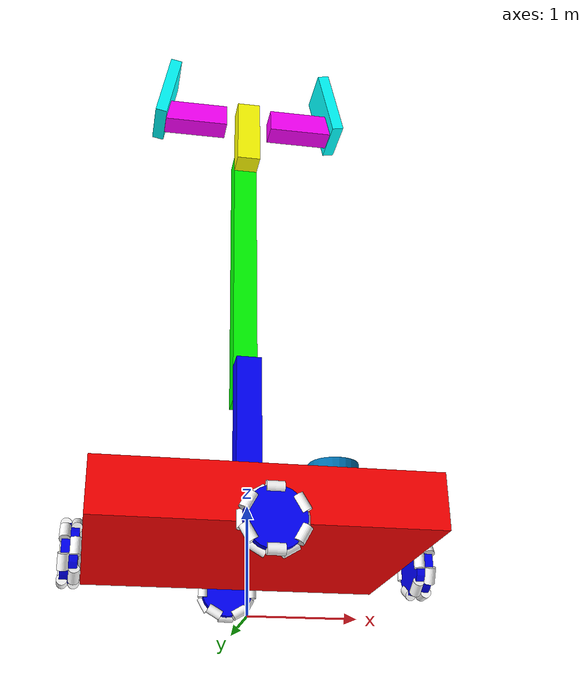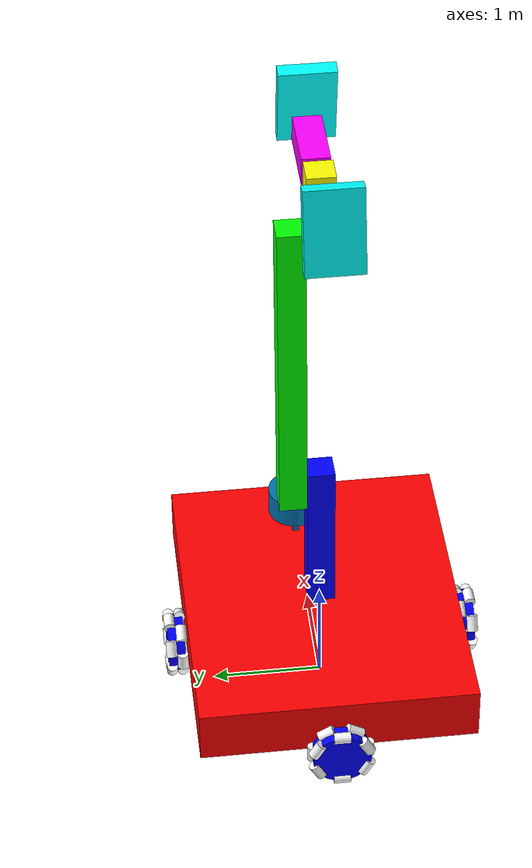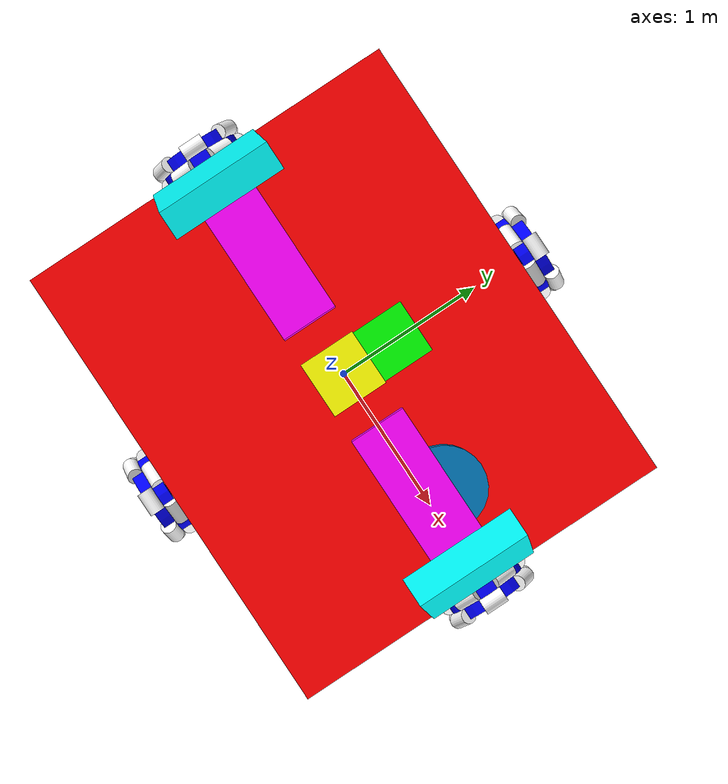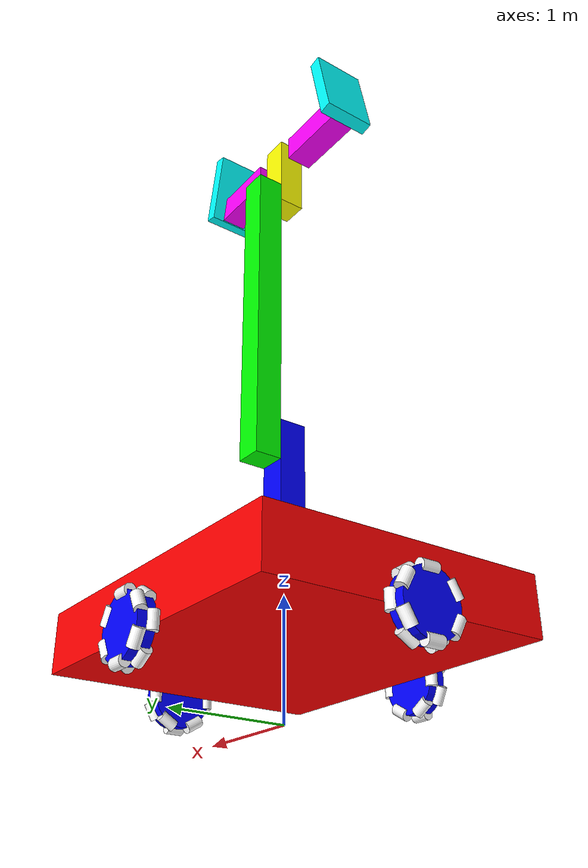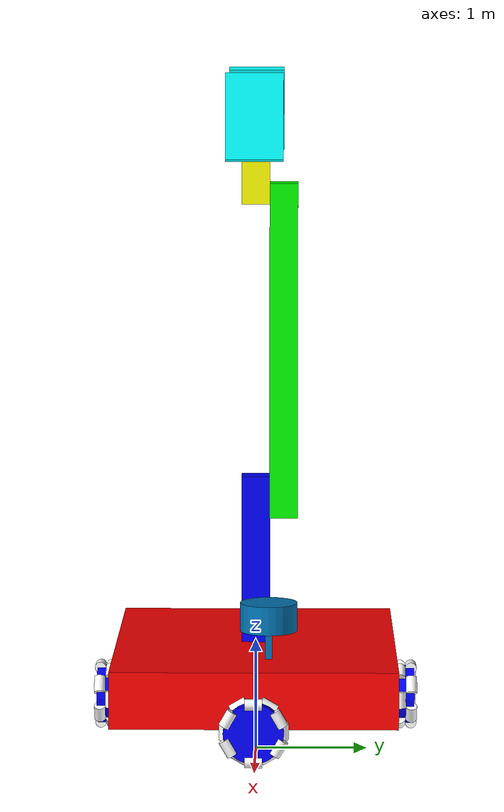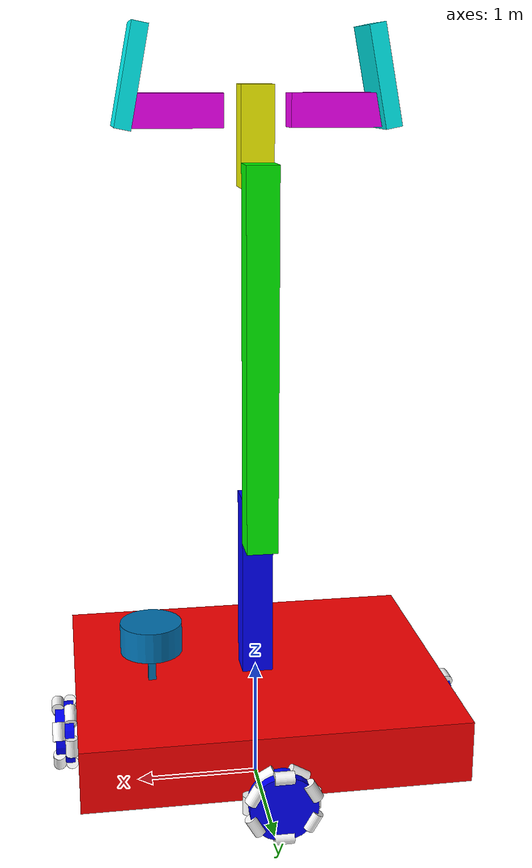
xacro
<?xml version="1.0"?>
<robot name="simple_robot" xmlns:xacro="http://www.ros.org/wiki/xacro">

        <xacro:include filename="$(find ros2_control_car)/model/gazebo.xacro"/>

        <xacro:include filename="$(find ros2_control_car)/model/wheels/omni_wheel.urdf.xacro"/>

        <link name="base_link">
                <visual>
                        <geometry>
                        <box size="${chassis_length} ${chassis_width} ${chassis_height}"/>
                        </geometry>
                        <origin xyz="0 0 ${chassis_offset}" rpy="0 0 0"/>
                        <material name="red"/>
                </visual>

                <collision>
                        <geometry>
                        <box size="0.3 0.25 0.05"/>
                        </geometry>
                        <origin xyz="0 0 ${chassis_offset}" rpy="0 0 0"/>
                </collision>

                <xacro:chassis_inertia />
        </link>

        <!-- LINKS ET JOINTS DES ROUES -->

        <xacro:omni_wheel
                prefix="lf"
                parent="base_link"
                xyz="${chassis_length/2 + wheel_width} 0 ${r}"
                rpy="0 0 ${-pi/2}"
        />

        <xacro:omni_wheel
                prefix="rf"
                parent="base_link"
                xyz="0 ${-chassis_width/2 - wheel_width} ${r}"
                rpy="0 0 ${pi}"
        />

        <xacro:omni_wheel
                prefix="lb"
                parent="base_link"
                xyz="0 ${chassis_width/2 + wheel_width} ${r}"
                rpy="0 0 0"
        />

        <xacro:omni_wheel
                prefix="rb"
                parent="base_link"
                xyz="${-chassis_length/2 - wheel_width} 0 ${r}"
                rpy="0 0 ${pi/2}"
        />

        <!--  ROBOTIC ARM LINKS-->

        <link name="fixed_arm">
                <visual>
                        <geometry>
                                <box size="${arm_length} ${arm_width} ${arm_height}"/>
                        </geometry>
                        <origin xyz="0 0 ${arm_height/2}" rpy="0 0 0"/>
                        <material name="blue"/>
                </visual>

                <collision>
                        <geometry>
                                <box size="${arm_length} ${arm_width} ${arm_height}"/>
                        </geometry>
                        <origin xyz="0 0 ${arm_height/2}" rpy="0 0 0"/>
                        <material name="blue"/>
                </collision>

                <xacro:arm_inertia/>
        </link>

        <link name="first_moving_arm">
                <visual>
                        <geometry>
                                <box size="${arm_length} ${arm_width} ${arm_height*2}"/>
                        </geometry>
                        <origin xyz="0 0 ${arm_height}" rpy="0 0 0"/>
                        <material name="green"/>
                </visual>

                <collision>
                        <geometry>
                                <box size="${arm_length} ${arm_width} ${arm_height*2}"/>
                        </geometry>
                        <origin xyz="0 0 ${arm_height}" rpy="0 0 0"/>
                        <material name="green"/>
                </collision>

                <xacro:arm_inertia/>
        </link>

        <link name="second_moving_arm">
                <visual>
                        <geometry>
                                <box size="${arm_length} ${arm_width} ${arm_height/2}"/>
                        </geometry>
                        <origin xyz="0 0 ${arm_height/4}" rpy="0 0 0"/>
                        <material name="yellow"/>
                </visual>

                <collision>
                        <geometry>
                                <box size="${arm_length} ${arm_width} ${arm_height/2}"/>
                        </geometry>
                        <origin xyz="0 0 ${arm_height/4}" rpy="0 0 0"/>
                        <material name="yellow"/>
                </collision>

                <xacro:arm_inertia/>
        </link>

        <!-- ROBOTIC ARM JOINTS-->

        <joint name="fixed_arm_joint" type="fixed">
                <parent link="base_link" />
                <child link="fixed_arm" />
                <origin xyz="0 0 ${chassis_offset + chassis_height/2}" rpy="0 0 0"/>
        </joint>

        <joint name="first_moving_arm_joint" type="revolute">
                <parent link="fixed_arm" />
                <child link="first_moving_arm" />
                <origin xyz="0 ${arm_width} ${3*arm_height/4}" rpy="0 0 0"/>
                <axis xyz="0 1 0"/>
                <limit effort="5000" velocity="10" lower="${-pi}" upper="${pi}"/>
                <dynamics damping="1.0" friction="1.0"/>
        </joint>

        <joint name="second_moving_arm_joint" type="revolute">
                <parent link="first_moving_arm" />
                <child link="second_moving_arm" />
                <origin xyz="0 -${arm_width} ${15*arm_height/8}" rpy="0 0 0"/>
                <axis xyz="0 1 0"/>
                <limit effort="5000" velocity="10" lower="${-pi}" upper="${pi}"/>
                <dynamics damping="1.0" friction="1.0"/>
        </joint>

        <!-- PLIERS LINK AND JOINT -->

        <link name="first_pliers">
                <visual>
                        <geometry>
                                <box size="${pliers_length} ${pliers_width} ${pliers_height}" />
                        </geometry>
                        <origin xyz="0 0 ${pliers_height/2}" rpy="0 0 0"/>
                        <material name="magenta" />
                </visual>

                <collision>
                        <geometry>
                                <box size="${pliers_length} ${pliers_width} ${pliers_height}" />
                        </geometry>
                        <origin xyz="0 0 ${pliers_height/2}" rpy="0 0 0"/>
                        <material name="magenta" />
                </collision>

                <xacro:pliers_inertia/>
        </link>

        <joint name="first_pliers_joint" type="revolute">
                <parent link="second_moving_arm" />
                <child link="first_pliers" />
                <origin xyz="${arm_length} 0 ${3*arm_height/8}" rpy="0 ${pi/2} 0"/>
                <axis xyz="0 -1 0"/>
                <limit effort="5000" velocity="10" lower="0" upper="1.571"/>
                <dynamics damping="1.0" friction="1.0"/>
        </joint>

        <link name="second_pliers">
                <visual>
                        <geometry>
                                <box size="${pliers_length} ${pliers_width} ${pliers_height}" />
                        </geometry>
                        <origin xyz="0 0 ${pliers_height/2}" rpy="0 0 0"/>
                        <material name="magenta" />
                </visual>

                <collision>
                        <geometry>
                                <box size="${pliers_length} ${pliers_width} ${pliers_height}" />
                        </geometry>
                        <origin xyz="0 0 ${pliers_height/2}" rpy="0 0 0"/>
                        <material name="magenta" />
                </collision>

                <xacro:pliers_inertia/>
        </link>

        <joint name="second_pliers_joint" type="revolute">
                <parent link="second_moving_arm" />
                <child link="second_pliers" />
                <origin xyz="${-arm_length} 0 ${3*arm_height/8}" rpy="0 ${pi/2} 3.1415926535"/>
                <axis xyz="0 -1 0"/>
                <limit effort="5000" velocity="10" lower="0" upper="1.571"/>
                <dynamics damping="1.0" friction="1.0"/>
        </joint>

        <link name="third_pliers">
                <visual>
                        <geometry>
                                <box size="${mini_pliers_length} ${mini_pliers_width} ${mini_pliers_height}" />
                        </geometry>
                        <origin xyz="0 0 ${mini_pliers_height/2}" rpy="0 0 0"/>
                        <material name="cyan" />
                </visual>

                <collision>
                        <geometry>
                                <box size="${mini_pliers_length} ${mini_pliers_width} ${mini_pliers_height}" />
                        </geometry>
                        <origin xyz="0 0 ${mini_pliers_height/2}" rpy="0 0 0"/>
                        <material name="cyan" />
                </collision>

                <xacro:mini_pliers_inertia/>
        </link>

        <joint name="third_pliers_joint" type="revolute">
                <parent link="first_pliers" />
                <child link="third_pliers" />
                <origin xyz="${pliers_length/2} 0 ${pliers_height}" rpy="0 ${pi/16 + pi/2} ${pi}"/>
                <axis xyz="0 1 0"/>
                <limit effort="5000" velocity="10" lower="0" upper="1.571"/>
                <dynamics damping="1.0" friction="1000.0"/>
        </joint>

        <link name="fourth_pliers">
                <visual>
                        <geometry>
                                <box size="${mini_pliers_length} ${mini_pliers_width} ${mini_pliers_height}" />
                        </geometry>
                        <origin xyz="0 0 ${mini_pliers_height/2}" rpy="0 0 0"/>
                        <material name="cyan" />
                </visual>

                <collision>
                        <geometry>
                                <box size="${mini_pliers_length} ${mini_pliers_width} ${mini_pliers_height}" />
                        </geometry>
                        <origin xyz="0 0 ${mini_pliers_height/2}" rpy="0 0 0"/>
                        <material name="cyan" />
                </collision>

                <xacro:mini_pliers_inertia/>
        </link>

        <joint name="fourth_pliers_joint" type="revolute">
                <parent link="second_pliers" />
                <child link="fourth_pliers" />
                <origin xyz="${pliers_length/2} 0 ${pliers_height}" rpy="0 ${pi/16 + pi/2} ${pi}"/>
                <axis xyz="0 1 0"/>
                <limit effort="5000" velocity="10" lower="0" upper="1.571"/>
                <dynamics damping="1.0" friction="1000.0"/>
        </joint>

        <!-- LIDAR LINK AND JOINT-->

        <link name="lidar_link">
                <visual>
                        <origin xyz="${lidar_radius/2} ${lidar_radius/2} ${lidar_length/2}" rpy="0 0 0" />
                        <geometry>
                                <cylinder length="${lidar_length}" radius="${lidar_radius}" />
                        </geometry>
                </visual>
                <visual>
                        <origin xyz="${lidar_radius/2} ${lidar_radius/2} ${-lidar_length/2}" rpy="0 0 0" />
                        <geometry>
                                <box size="${arm_length/4} ${arm_width/4} ${arm_height/6}"/>
                        </geometry>
                </visual>

                <collision name="collision">
                        <origin xyz="${lidar_radius/2} ${lidar_radius/2} ${lidar_length/2}" rpy="0 0 0" />
                        <geometry>
                                <cylinder length="${lidar_length}" radius="${lidar_radius}" />
                        </geometry>
                        <gazebo>
                                <collide_bitmask>0x00</collide_bitmask>
                        </gazebo>
                </collision>

                <xacro:lidar_inertia />

        </link>

        <joint name="lidar_joint" type="fixed">
                <parent link="base_link" />
                <child link="lidar_link" />
                <origin xyz="${chassis_length/4} 0 ${chassis_offset + chassis_height}" rpy="0 0 0" />
        </joint>

        <!-- ROS2_CONTROL -->

        <ros2_control name="RobotController" type="system">
                <hardware>
                        <plugin>gz_ros2_control/GazeboSimSystem</plugin>
                </hardware>

                <joint name="lf_joint">
                        <command_interface name="velocity"/>
                        <state_interface name="position"/>
                        <state_interface name="velocity"/>
                        <state_interface name="effort"/>
                </joint>

                <joint name="rf_joint">
                        <command_interface name="velocity"/>
                        <state_interface name="position"/>
                        <state_interface name="velocity"/>
                        <state_interface name="effort"/>
                </joint>

                <joint name="lb_joint">
                        <command_interface name="velocity"/>
                        <state_interface name="position"/>
                        <state_interface name="velocity"/>
                        <state_interface name="effort"/>
                </joint>

                <joint name="rb_joint">
                        <command_interface name="velocity"/>
                        <state_interface name="position"/>
                        <state_interface name="velocity"/>
                        <state_interface name="effort"/>
                </joint>

                <joint name="first_moving_arm_joint">
                        <command_interface name="position">
                                <param name="min">-3.1415926535</param>
                                <param name="max">3.1415926535</param>
                        </command_interface>
                        <state_interface name="position"/>
                        <state_interface name="velocity"/>
                        <state_interface name="effort"/>
                </joint>

                <joint name="second_moving_arm_joint">
                        <command_interface name="position">
                                <param name="min">-3.1415926535</param>
                                <param name="max">3.1415926535</param>
                        </command_interface>
                        <state_interface name="position"/>
                        <state_interface name="velocity"/>
                        <state_interface name="effort"/>
                </joint>

                <joint name="first_pliers_joint">
                        <command_interface name="position">
                                <param name="min">0</param>
                                <param name="max">1.571</param>
                        </command_interface>
                        <state_interface name="position"/>
                        <state_interface name="velocity"/>
                        <state_interface name="effort"/>
                </joint>

                <joint name="second_pliers_joint">
                        <command_interface name="position">
                                <param name="min">0</param>
                                <param name="max">1.571</param>
                        </command_interface>
                        <state_interface name="position"/>
                        <state_interface name="velocity"/>
                        <state_interface name="effort"/>
                </joint>

        </ros2_control>

</robot>

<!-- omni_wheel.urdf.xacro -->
<robot xmlns:xacro="http://www.ros.org/wiki/xacro">

  <xacro:include filename="$(find ros2_control_car)/model/parameters.xacro"/>
  <!-- ========== MACRO ROLLER ========== -->
  <xacro:macro name="roller" params="prefix parent idx angle1 angle2 wheel_radius wheel_width roller_radius roller_length">

    <link name="${prefix}_roller_${idx}">
      <inertial>
        <origin xyz="0 0 0"/>
        <mass value="0.02"/>
        <inertia
          ixx="0.00001" iyy="0.00001" izz="0.00001"
          ixy="0" ixz="0" iyz="0"/>
      </inertial>

      <collision>
        <origin rpy="1.5708 0 0"/>
        <geometry>
          <cylinder radius="${roller_radius}" length="${roller_length}"/>
        </geometry>
      </collision>

      <visual>
        <origin rpy="1.5708 0 0"/>
        <geometry>
          <cylinder radius="${roller_radius}" length="${roller_length}"/>
        </geometry>
        <material name="white" />
      </visual>
    </link>

    <link name="${prefix}_roller_neighbor_${idx}">
      <inertial>
        <origin xyz="0 0 0"/>
        <mass value="0.02"/>
        <inertia
          ixx="0.00001" iyy="0.00001" izz="0.00001"
          ixy="0" ixz="0" iyz="0"/>
      </inertial>

      <collision>
        <origin rpy="1.5708 0 0"/>
        <geometry>
          <cylinder radius="${roller_radius}" length="${roller_length}"/>
        </geometry>
      </collision>

      <visual>
        <origin rpy="1.5708 0 0"/>
        <geometry>
          <cylinder radius="${roller_radius}" length="${roller_length}"/>
        </geometry>
        <material name="white" />
      </visual>
    </link>

    <joint name="${prefix}_roller_${idx}_joint" type="continuous">
      <parent link="${parent}"/>
      <child link="${prefix}_roller_${idx}"/>
      <origin
        xyz="${(wheel_radius - roller_radius) * cos(angle1)} ${-wheel_width/2} ${(wheel_radius - roller_radius) * sin(angle1)}"
        rpy="${3*pi/2 - angle1} 0 1.5708"/>
      <axis xyz="0 1 0"/>
    </joint>

    <joint name="${prefix}_roller_neighbor_${idx}_joint" type="continuous">
      <parent link="${parent}"/>
      <child link="${prefix}_roller_neighbor_${idx}"/>
      <origin
        xyz="${(wheel_radius - roller_radius) * cos(angle2)} ${2*roller_radius - wheel_width/2} ${(wheel_radius - roller_radius) * sin(angle2)}"
        rpy="${3*pi/2 - angle2} 0 1.5708"/>
      <axis xyz="0 1 0"/>
    </joint>

  </xacro:macro>

  <!-- ========== RÉCURSION ========== -->
  <xacro:macro name="roller_loop"
               params="prefix parent idx count wheel_radius wheel_width roller_radius roller_length">

    <xacro:if value="${idx &lt; count}">
      <xacro:property name="angle1"
                      value="${2 * pi * idx / count}"/>
      <xacro:property name="angle2"
                      value="${2 * pi * idx / count + pi / count}" />

      <xacro:roller
        prefix="${prefix}"
        parent="${parent}"
        idx="${idx}"
        angle1="${angle1}"
        angle2="${angle2}"
        wheel_radius="${wheel_radius}"
        wheel_width="${wheel_width}"
        roller_radius="${roller_radius}"
        roller_length="${roller_length}"/>

      <!-- appel récursif -->
      <xacro:roller_loop
        prefix="${prefix}"
        parent="${parent}"
        idx="${idx + 1}"
        count="${count}"
        wheel_radius="${wheel_radius}"
        wheel_width="${wheel_width}"
        roller_radius="${roller_radius}"
        roller_length="${roller_length}"/>
    </xacro:if>

  </xacro:macro>

  <!-- ========== OMNI WHEEL COMPLETE ========== -->
  <xacro:macro name="omni_wheel"
               params="prefix parent xyz rpy">

    <!-- moyeu -->
    <link name="${prefix}_hub">
      <inertial>
        <origin xyz="0 0 0"/>
        <mass value="0.5"/>
        <inertia
          ixx="0.001" iyy="0.001" izz="0.001"
          ixy="0.0" ixz="0.0" iyz="0.0"/>
      </inertial>

      <visual>
        <geometry>
          <cylinder radius="${7*wheel_radius/8}" length="${3*wheel_width/2}"/>
        </geometry>
        <material name="blue"/>
        <origin rpy="1.5708 0 0"/>
      </visual>

      <collision>
        <geometry>
          <cylinder radius="${7*wheel_radius/8}" length="${3*wheel_width/2}"/>
        </geometry>
        <material name="blue"/>
        <origin rpy="1.5708 0 0"/>
      </collision>
    </link>

    <joint name="${prefix}_joint" type="continuous">
      <parent link="${parent}"/>
      <child link="${prefix}_hub"/>
      <origin xyz="${xyz}" rpy="${rpy}"/>
      <axis xyz="0 1 0"/>
    </joint>

    <!-- génération des rollers -->
    <xacro:roller_loop
      prefix="${prefix}"
      parent="${prefix}_hub"
      idx="0"
      count="${roller_count}"
      wheel_radius="${wheel_radius}"
      wheel_width="${wheel_width}"
      roller_radius="${roller_radius}"
      roller_length="${roller_length}"/>

  </xacro:macro>

</robot>

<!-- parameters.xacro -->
<robot xmlns:xacro="http://www.ros.org/wiki/xacro">

<xacro:property name="SCALE_FACTOR" value="5" />

<xacro:property name="chassis_length" value="${0.6*SCALE_FACTOR}" />
<xacro:property name="chassis_width" value="${0.5*SCALE_FACTOR}" />
<xacro:property name="chassis_height" value="${0.1*SCALE_FACTOR}" />
<xacro:property name="chassis_offset" value="${0.15*SCALE_FACTOR}" />

<xacro:property name="chassis_density" value="271.0"/>
<xacro:property name="chassis_mass" value="${chassis_density * (chassis_length * chassis_width * chassis_height)}"/>

<xacro:property name="Ix_chassis" value="${(1/12)*chassis_mass*(chassis_width*chassis_width+chassis_height*chassis_height)}" />
<xacro:property name="Iy_chassis" value="${(1/12)*chassis_mass*(chassis_length*chassis_length+chassis_width*chassis_width)}" />
<xacro:property name="Iz_chassis" value="${(1/12)*chassis_mass*(chassis_length*chassis_length+chassis_height*chassis_height)}" />

<xacro:macro name="chassis_inertia">
        <inertial>
                <origin xyz="0 0 ${chassis_offset}" rpy="0 0 0"/>
                <mass value="${chassis_mass}"/>
                <inertia ixx="${Ix_chassis}" ixy="0.0" ixz="0.0" iyy="${Iy_chassis}" iyz="0" izz="${Iz_chassis}" />
        </inertial>
</xacro:macro>

<xacro:property name="r" value="${0.1*SCALE_FACTOR}" />
<xacro:property name="wheel_radius" value="${0.06*SCALE_FACTOR}"/>
<xacro:property name="wheel_width" value="${0.02*SCALE_FACTOR}"/>

<xacro:property name="roller_radius" value="${0.01*SCALE_FACTOR}"/>
<xacro:property name="roller_length" value="${0.03*SCALE_FACTOR}"/>
<xacro:property name="roller_count" value="6"/>

<xacro:property name="arm_length" value="${0.05*SCALE_FACTOR}" />
<xacro:property name="arm_width" value="${0.05*SCALE_FACTOR}" />
<xacro:property name="arm_height" value="${0.3*SCALE_FACTOR}" />

<xacro:property name="arm_density" value="271.0"/>
<xacro:property name="arm_mass" value="${arm_density * (arm_length * arm_width * arm_height)}"/>

<xacro:property name="Ix_body" value="${(1/12)*arm_mass*(arm_width*arm_width+arm_height*arm_height)}" />
<xacro:property name="Iy_body" value="${(1/12)*arm_mass*(arm_length*arm_length+arm_width*arm_width)}" />
<xacro:property name="Iz_body" value="${(1/12)*arm_mass*(arm_length*arm_length+arm_height*arm_height)}" />

<xacro:macro name="arm_inertia">
        <inertial>
        <origin rpy="0 0 0" xyz="0 0 ${arm_height/2}"/>
        <mass value="${arm_mass}"/>
        <inertia ixx="${Ix_body}" ixy="0.0" ixz="0.0" iyy="${Iy_body}" iyz="0" izz="${Iz_body}" />
        </inertial>
</xacro:macro>

<xacro:property name="little_Ix_body" value="${(1/12)*m*(arm_width*arm_width+(arm_height/2)*(arm_height/2))}" />
<xacro:property name="little_Iy_body" value="${(1/12)*m*(arm_length*arm_length+arm_width*arm_width)}" />
<xacro:property name="little_Iz_body" value="${(1/12)*m*(arm_length*arm_length+(arm_height/2)*(arm_height/2))}" />
<xacro:macro name="little_arm_inertia">
        <inertial>
        <origin rpy="0 0 0" xyz="0 0 ${arm_height/4}"/>
        <mass value="${arm_mass/2}"/>
        <inertia ixx="${Ix_body}" ixy="0.0" ixz="0.0" iyy="${Iy_body}" iyz="0" izz="${Iz_body}" />
        </inertial>
</xacro:macro>

<xacro:property name="pliers_length" value="${0.05*SCALE_FACTOR}" />
<xacro:property name="pliers_width" value="${0.05*SCALE_FACTOR}" />
<xacro:property name="pliers_height" value="${arm_height/2}" />

<xacro:property name="pliers_density" value="271.0"/>
<xacro:property name="pliers_mass" value="${pliers_density * (pliers_length * pliers_width * pliers_height)}"/>

<xacro:property name="Ix_pliers" value="${(1/12) * pliers_mass * (pliers_width*pliers_width + pliers_height*pliers_height)}" />
<xacro:property name="Iy_pliers" value="${(1/12) * pliers_mass * (pliers_length*pliers_length + pliers_width*pliers_width)}" />
<xacro:property name="Iz_pliers" value="${(1/12) * pliers_mass * (pliers_length*pliers_length + pliers_height*pliers_height)}" />

<xacro:macro name="pliers_inertia">
        <inertial>
        <origin rpy="0 0 0" xyz="0 0 ${pliers_height/2}"/>
        <mass value="${pliers_mass}"/>
        <inertia ixx="${Ix_pliers}" ixy="0.0" ixz="0.0" iyy="${Iy_pliers}" iyz="0" izz="${Iz_pliers}" />
        </inertial>
</xacro:macro>

<xacro:property name="mini_pliers_length" value="${0.025*SCALE_FACTOR}" />
<xacro:property name="mini_pliers_width" value="${0.1*SCALE_FACTOR}" />
<xacro:property name="mini_pliers_height" value="${arm_height/2}" />

<xacro:property name="mini_pliers_density" value="271.0"/>
<xacro:property name="mini_pliers_mass" value="${mini_pliers_density * (mini_pliers_length * mini_pliers_width * mini_pliers_height)}"/>

<xacro:property name="Ix_mini_pliers" value="${(1/12) * mini_pliers_mass * (mini_pliers_width*mini_pliers_width + mini_pliers_height*mini_pliers_height)}" />
<xacro:property name="Iy_mini_pliers" value="${(1/12) * mini_pliers_mass * (mini_pliers_length*mini_pliers_length + mini_pliers_width*mini_pliers_width)}" />
<xacro:property name="Iz_mini_pliers" value="${(1/12) * mini_pliers_mass * (mini_pliers_length*mini_pliers_length + mini_pliers_height*mini_pliers_height)}" />

<xacro:macro name="mini_pliers_inertia">
        <inertial>
        <origin rpy="0 0 0" xyz="0 0 ${mini_pliers_height/2}"/>
        <mass value="${pliers_mass}"/>
        <inertia ixx="${Ix_mini_pliers}" ixy="0.0" ixz="0.0" iyy="${Iy_mini_pliers}" iyz="0" izz="${Iz_mini_pliers}" />
        </inertial>
</xacro:macro>

<xacro:property name="lidar_radius" value="${0.05*SCALE_FACTOR}"/>
<xacro:property name="lidar_length" value="${0.05*SCALE_FACTOR}"/>

<xacro:macro name="lidar_inertia">
        <inertial>
                <mass value="1e-6"/>
                <origin xyz="0 0 0" rpy="0 0 0" />
                <inertia ixx="1e-6" ixy="0" ixz="0" iyy="1e-6" iyz="0" izz="1e-6" />
        </inertial>
</xacro:macro>

<material name="blue">
        <color rgba="0 0 1 1"/>
</material>

<material name="red">
        <color rgba="1 0 0 1"/>
</material>

<material name="green">
        <color rgba="0 1 0 1"/>
</material>

<material name="yellow">
        <color rgba="1 1 0 1"/>
</material>

<material name="magenta">
        <color rgba="1 0 1 1" />
</material>

<material name="cyan">
        <color rgba="0 1 1 1" />
</material>

<material name="white">
        <color rgba="1 1 1 1" />
</material>

</robot>
